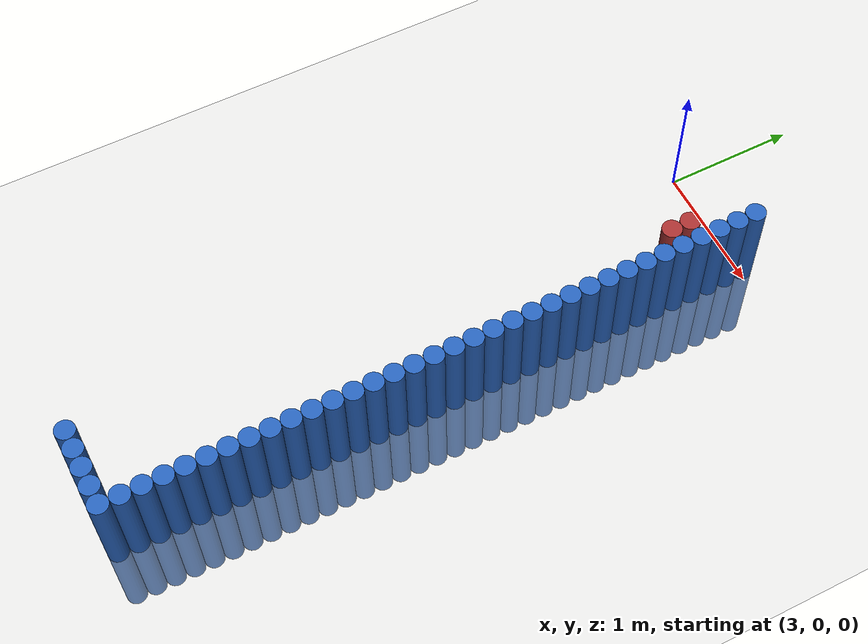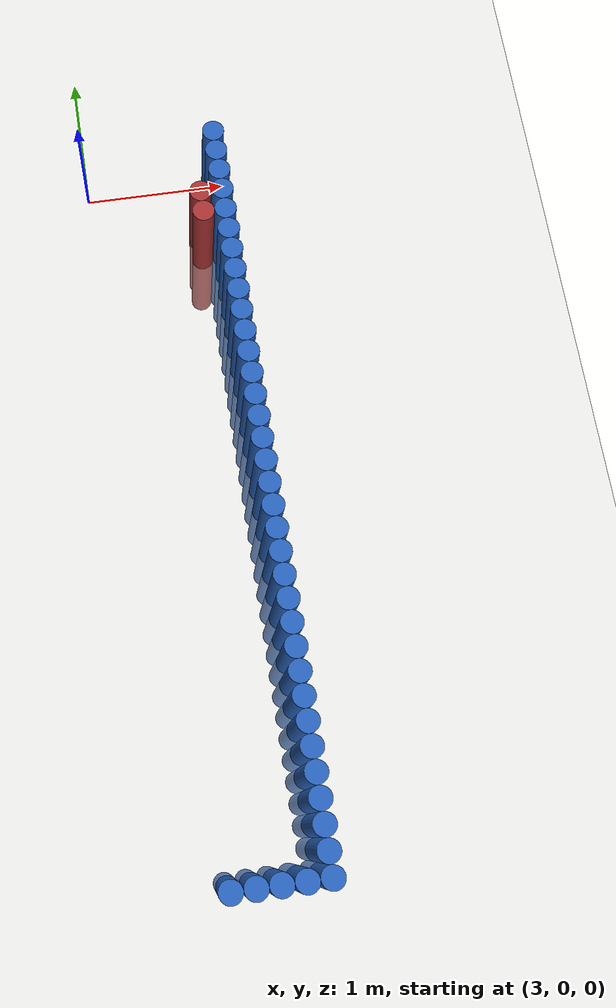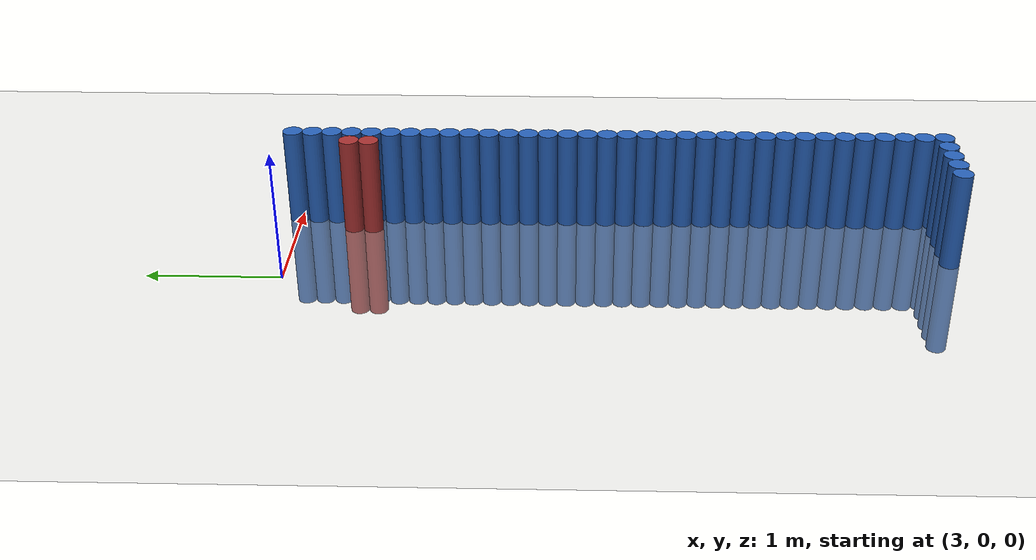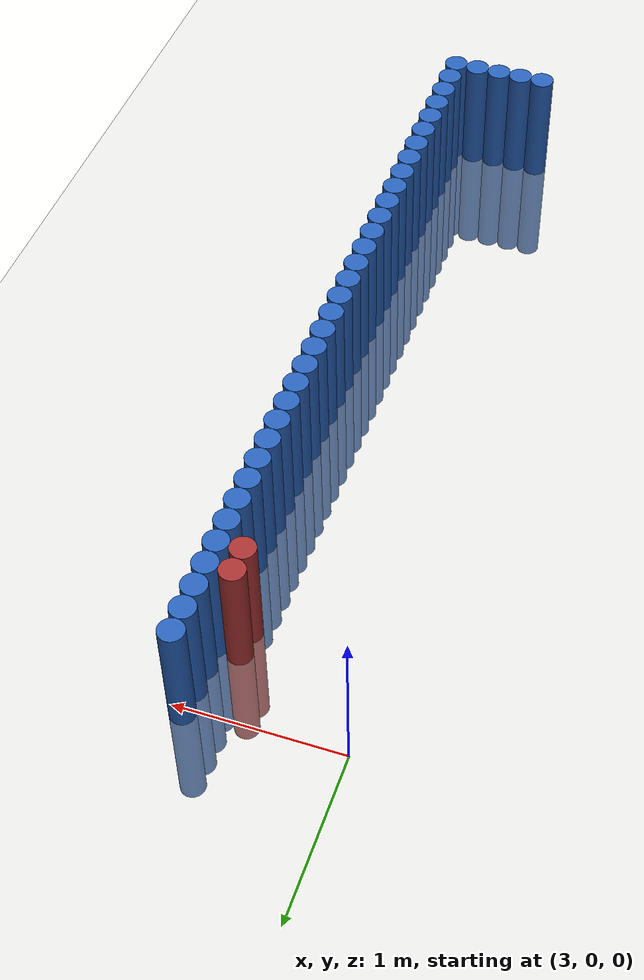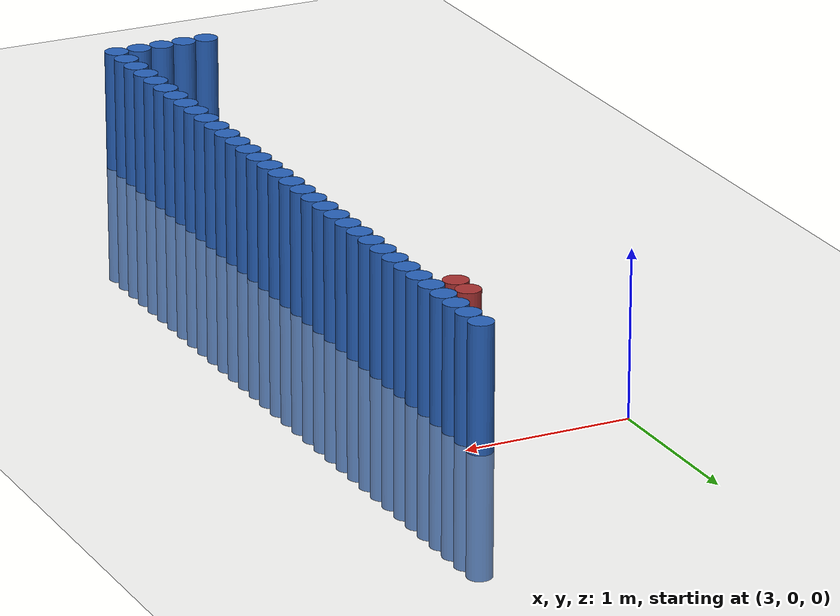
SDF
<sdf version="1.6">
 <world name="default">
  <model name="ground_plane">
   <static>1</static>
   <link name="link">
    <collision name="collision">
     <geometry><plane><normal>0 0 1</normal><size>100 100</size></plane></geometry>
     <surface><friction><ode><mu>100</mu><mu2>50</mu2></ode></friction></surface>
    </collision>
    <visual name="visual">
     <cast_shadows>0</cast_shadows>
     <geometry><plane><normal>0 0 1</normal><size>100 100</size></plane></geometry>
     <material>
      <script><uri>file://media/materials/scripts/gazebo.material</uri><name>Gazebo/Grey</name></script>
     </material>
    </visual>
   </link>
  </model>
  <model name="unit_cylinder_0">
   <static>1</static>
   <pose>3.925000 -4.925000 0.000000 0.000000 0.000000 0.000000</pose>
   <link name="link">
    <inertial>
     <mass>1</mass>
     <inertia><ixx>0.145833</ixx><ixy>0</ixy><ixz>0</ixz><iyy>0.145833</iyy><iyz>0</iyz><izz>0.125</izz></inertia>
    </inertial>
    <collision name="collision">
     <geometry><cylinder><radius>0.075000</radius><length>1.5</length></cylinder></geometry>
    </collision>
    <visual name="visual">
     <geometry><cylinder><radius>0.075000</radius><length>1.5</length></cylinder></geometry>
     <material>
      <ambient>0.152000 0.379000 0.720000 1</ambient>
      <diffuse>0.152000 0.379000 0.720000 1</diffuse>
     </material>
     <material>
      <script><name>Gazebo/Grey</name><uri>file://media/materials/scripts/gazebo.material</uri></script>
     </material>
    </visual>
   </link>
  </model>
  <model name="unit_cylinder_1">
   <static>1</static>
   <pose>3.775000 -4.925000 0.000000 0.000000 0.000000 0.000000</pose>
   <link name="link">
    <inertial>
     <mass>1</mass>
     <inertia><ixx>0.145833</ixx><ixy>0</ixy><ixz>0</ixz><iyy>0.145833</iyy><iyz>0</iyz><izz>0.125</izz></inertia>
    </inertial>
    <collision name="collision">
     <geometry><cylinder><radius>0.075000</radius><length>1.5</length></cylinder></geometry>
    </collision>
    <visual name="visual">
     <geometry><cylinder><radius>0.075000</radius><length>1.5</length></cylinder></geometry>
     <material>
      <ambient>0.152000 0.379000 0.720000 1</ambient>
      <diffuse>0.152000 0.379000 0.720000 1</diffuse>
     </material>
     <material>
      <script><name>Gazebo/Grey</name><uri>file://media/materials/scripts/gazebo.material</uri></script>
     </material>
    </visual>
   </link>
  </model>
  <model name="unit_cylinder_2">
   <static>1</static>
   <pose>3.625000 -4.925000 0.000000 0.000000 0.000000 0.000000</pose>
   <link name="link">
    <inertial>
     <mass>1</mass>
     <inertia><ixx>0.145833</ixx><ixy>0</ixy><ixz>0</ixz><iyy>0.145833</iyy><iyz>0</iyz><izz>0.125</izz></inertia>
    </inertial>
    <collision name="collision">
     <geometry><cylinder><radius>0.075000</radius><length>1.5</length></cylinder></geometry>
    </collision>
    <visual name="visual">
     <geometry><cylinder><radius>0.075000</radius><length>1.5</length></cylinder></geometry>
     <material>
      <ambient>0.152000 0.379000 0.720000 1</ambient>
      <diffuse>0.152000 0.379000 0.720000 1</diffuse>
     </material>
     <material>
      <script><name>Gazebo/Grey</name><uri>file://media/materials/scripts/gazebo.material</uri></script>
     </material>
    </visual>
   </link>
  </model>
  <model name="unit_cylinder_3">
   <static>1</static>
   <pose>3.475000 -4.925000 0.000000 0.000000 0.000000 0.000000</pose>
   <link name="link">
    <inertial>
     <mass>1</mass>
     <inertia><ixx>0.145833</ixx><ixy>0</ixy><ixz>0</ixz><iyy>0.145833</iyy><iyz>0</iyz><izz>0.125</izz></inertia>
    </inertial>
    <collision name="collision">
     <geometry><cylinder><radius>0.075000</radius><length>1.5</length></cylinder></geometry>
    </collision>
    <visual name="visual">
     <geometry><cylinder><radius>0.075000</radius><length>1.5</length></cylinder></geometry>
     <material>
      <ambient>0.152000 0.379000 0.720000 1</ambient>
      <diffuse>0.152000 0.379000 0.720000 1</diffuse>
     </material>
     <material>
      <script><name>Gazebo/Grey</name><uri>file://media/materials/scripts/gazebo.material</uri></script>
     </material>
    </visual>
   </link>
  </model>
  <model name="unit_cylinder_4">
   <static>1</static>
   <pose>3.325000 -4.925000 0.000000 0.000000 0.000000 0.000000</pose>
   <link name="link">
    <inertial>
     <mass>1</mass>
     <inertia><ixx>0.145833</ixx><ixy>0</ixy><ixz>0</ixz><iyy>0.145833</iyy><iyz>0</iyz><izz>0.125</izz></inertia>
    </inertial>
    <collision name="collision">
     <geometry><cylinder><radius>0.075000</radius><length>1.5</length></cylinder></geometry>
    </collision>
    <visual name="visual">
     <geometry><cylinder><radius>0.075000</radius><length>1.5</length></cylinder></geometry>
     <material>
      <ambient>0.152000 0.379000 0.720000 1</ambient>
      <diffuse>0.152000 0.379000 0.720000 1</diffuse>
     </material>
     <material>
      <script><name>Gazebo/Grey</name><uri>file://media/materials/scripts/gazebo.material</uri></script>
     </material>
    </visual>
   </link>
  </model>
  <model name="unit_cylinder_50">
   <static>1</static>
   <pose>3.925000 -4.775000 0.000000 0.000000 0.000000 0.000000</pose>
   <link name="link">
    <inertial>
     <mass>1</mass>
     <inertia><ixx>0.145833</ixx><ixy>0</ixy><ixz>0</ixz><iyy>0.145833</iyy><iyz>0</iyz><izz>0.125</izz></inertia>
    </inertial>
    <collision name="collision">
     <geometry><cylinder><radius>0.075000</radius><length>1.5</length></cylinder></geometry>
    </collision>
    <visual name="visual">
     <geometry><cylinder><radius>0.075000</radius><length>1.5</length></cylinder></geometry>
     <material>
      <ambient>0.152000 0.379000 0.720000 1</ambient>
      <diffuse>0.152000 0.379000 0.720000 1</diffuse>
     </material>
     <material>
      <script><name>Gazebo/Grey</name><uri>file://media/materials/scripts/gazebo.material</uri></script>
     </material>
    </visual>
   </link>
  </model>
  <model name="unit_cylinder_52">
   <static>1</static>
   <pose>3.925000 -4.625000 0.000000 0.000000 0.000000 0.000000</pose>
   <link name="link">
    <inertial>
     <mass>1</mass>
     <inertia><ixx>0.145833</ixx><ixy>0</ixy><ixz>0</ixz><iyy>0.145833</iyy><iyz>0</iyz><izz>0.125</izz></inertia>
    </inertial>
    <collision name="collision">
     <geometry><cylinder><radius>0.075000</radius><length>1.5</length></cylinder></geometry>
    </collision>
    <visual name="visual">
     <geometry><cylinder><radius>0.075000</radius><length>1.5</length></cylinder></geometry>
     <material>
      <ambient>0.152000 0.379000 0.720000 1</ambient>
      <diffuse>0.152000 0.379000 0.720000 1</diffuse>
     </material>
     <material>
      <script><name>Gazebo/Grey</name><uri>file://media/materials/scripts/gazebo.material</uri></script>
     </material>
    </visual>
   </link>
  </model>
  <model name="unit_cylinder_54">
   <static>1</static>
   <pose>3.925000 -4.475000 0.000000 0.000000 0.000000 0.000000</pose>
   <link name="link">
    <inertial>
     <mass>1</mass>
     <inertia><ixx>0.145833</ixx><ixy>0</ixy><ixz>0</ixz><iyy>0.145833</iyy><iyz>0</iyz><izz>0.125</izz></inertia>
    </inertial>
    <collision name="collision">
     <geometry><cylinder><radius>0.075000</radius><length>1.5</length></cylinder></geometry>
    </collision>
    <visual name="visual">
     <geometry><cylinder><radius>0.075000</radius><length>1.5</length></cylinder></geometry>
     <material>
      <ambient>0.152000 0.379000 0.720000 1</ambient>
      <diffuse>0.152000 0.379000 0.720000 1</diffuse>
     </material>
     <material>
      <script><name>Gazebo/Grey</name><uri>file://media/materials/scripts/gazebo.material</uri></script>
     </material>
    </visual>
   </link>
  </model>
  <model name="unit_cylinder_56">
   <static>1</static>
   <pose>3.925000 -4.325000 0.000000 0.000000 0.000000 0.000000</pose>
   <link name="link">
    <inertial>
     <mass>1</mass>
     <inertia><ixx>0.145833</ixx><ixy>0</ixy><ixz>0</ixz><iyy>0.145833</iyy><iyz>0</iyz><izz>0.125</izz></inertia>
    </inertial>
    <collision name="collision">
     <geometry><cylinder><radius>0.075000</radius><length>1.5</length></cylinder></geometry>
    </collision>
    <visual name="visual">
     <geometry><cylinder><radius>0.075000</radius><length>1.5</length></cylinder></geometry>
     <material>
      <ambient>0.152000 0.379000 0.720000 1</ambient>
      <diffuse>0.152000 0.379000 0.720000 1</diffuse>
     </material>
     <material>
      <script><name>Gazebo/Grey</name><uri>file://media/materials/scripts/gazebo.material</uri></script>
     </material>
    </visual>
   </link>
  </model>
  <model name="unit_cylinder_58">
   <static>1</static>
   <pose>3.925000 -4.175000 0.000000 0.000000 0.000000 0.000000</pose>
   <link name="link">
    <inertial>
     <mass>1</mass>
     <inertia><ixx>0.145833</ixx><ixy>0</ixy><ixz>0</ixz><iyy>0.145833</iyy><iyz>0</iyz><izz>0.125</izz></inertia>
    </inertial>
    <collision name="collision">
     <geometry><cylinder><radius>0.075000</radius><length>1.5</length></cylinder></geometry>
    </collision>
    <visual name="visual">
     <geometry><cylinder><radius>0.075000</radius><length>1.5</length></cylinder></geometry>
     <material>
      <ambient>0.152000 0.379000 0.720000 1</ambient>
      <diffuse>0.152000 0.379000 0.720000 1</diffuse>
     </material>
     <material>
      <script><name>Gazebo/Grey</name><uri>file://media/materials/scripts/gazebo.material</uri></script>
     </material>
    </visual>
   </link>
  </model>
  <model name="unit_cylinder_60">
   <static>1</static>
   <pose>3.925000 -4.025000 0.000000 0.000000 0.000000 0.000000</pose>
   <link name="link">
    <inertial>
     <mass>1</mass>
     <inertia><ixx>0.145833</ixx><ixy>0</ixy><ixz>0</ixz><iyy>0.145833</iyy><iyz>0</iyz><izz>0.125</izz></inertia>
    </inertial>
    <collision name="collision">
     <geometry><cylinder><radius>0.075000</radius><length>1.5</length></cylinder></geometry>
    </collision>
    <visual name="visual">
     <geometry><cylinder><radius>0.075000</radius><length>1.5</length></cylinder></geometry>
     <material>
      <ambient>0.152000 0.379000 0.720000 1</ambient>
      <diffuse>0.152000 0.379000 0.720000 1</diffuse>
     </material>
     <material>
      <script><name>Gazebo/Grey</name><uri>file://media/materials/scripts/gazebo.material</uri></script>
     </material>
    </visual>
   </link>
  </model>
  <model name="unit_cylinder_62">
   <static>1</static>
   <pose>3.925000 -3.875000 0.000000 0.000000 0.000000 0.000000</pose>
   <link name="link">
    <inertial>
     <mass>1</mass>
     <inertia><ixx>0.145833</ixx><ixy>0</ixy><ixz>0</ixz><iyy>0.145833</iyy><iyz>0</iyz><izz>0.125</izz></inertia>
    </inertial>
    <collision name="collision">
     <geometry><cylinder><radius>0.075000</radius><length>1.5</length></cylinder></geometry>
    </collision>
    <visual name="visual">
     <geometry><cylinder><radius>0.075000</radius><length>1.5</length></cylinder></geometry>
     <material>
      <ambient>0.152000 0.379000 0.720000 1</ambient>
      <diffuse>0.152000 0.379000 0.720000 1</diffuse>
     </material>
     <material>
      <script><name>Gazebo/Grey</name><uri>file://media/materials/scripts/gazebo.material</uri></script>
     </material>
    </visual>
   </link>
  </model>
  <model name="unit_cylinder_64">
   <static>1</static>
   <pose>3.925000 -3.725000 0.000000 0.000000 0.000000 0.000000</pose>
   <link name="link">
    <inertial>
     <mass>1</mass>
     <inertia><ixx>0.145833</ixx><ixy>0</ixy><ixz>0</ixz><iyy>0.145833</iyy><iyz>0</iyz><izz>0.125</izz></inertia>
    </inertial>
    <collision name="collision">
     <geometry><cylinder><radius>0.075000</radius><length>1.5</length></cylinder></geometry>
    </collision>
    <visual name="visual">
     <geometry><cylinder><radius>0.075000</radius><length>1.5</length></cylinder></geometry>
     <material>
      <ambient>0.152000 0.379000 0.720000 1</ambient>
      <diffuse>0.152000 0.379000 0.720000 1</diffuse>
     </material>
     <material>
      <script><name>Gazebo/Grey</name><uri>file://media/materials/scripts/gazebo.material</uri></script>
     </material>
    </visual>
   </link>
  </model>
  <model name="unit_cylinder_66">
   <static>1</static>
   <pose>3.925000 -3.575000 0.000000 0.000000 0.000000 0.000000</pose>
   <link name="link">
    <inertial>
     <mass>1</mass>
     <inertia><ixx>0.145833</ixx><ixy>0</ixy><ixz>0</ixz><iyy>0.145833</iyy><iyz>0</iyz><izz>0.125</izz></inertia>
    </inertial>
    <collision name="collision">
     <geometry><cylinder><radius>0.075000</radius><length>1.5</length></cylinder></geometry>
    </collision>
    <visual name="visual">
     <geometry><cylinder><radius>0.075000</radius><length>1.5</length></cylinder></geometry>
     <material>
      <ambient>0.152000 0.379000 0.720000 1</ambient>
      <diffuse>0.152000 0.379000 0.720000 1</diffuse>
     </material>
     <material>
      <script><name>Gazebo/Grey</name><uri>file://media/materials/scripts/gazebo.material</uri></script>
     </material>
    </visual>
   </link>
  </model>
  <model name="unit_cylinder_68">
   <static>1</static>
   <pose>3.925000 -3.425000 0.000000 0.000000 0.000000 0.000000</pose>
   <link name="link">
    <inertial>
     <mass>1</mass>
     <inertia><ixx>0.145833</ixx><ixy>0</ixy><ixz>0</ixz><iyy>0.145833</iyy><iyz>0</iyz><izz>0.125</izz></inertia>
    </inertial>
    <collision name="collision">
     <geometry><cylinder><radius>0.075000</radius><length>1.5</length></cylinder></geometry>
    </collision>
    <visual name="visual">
     <geometry><cylinder><radius>0.075000</radius><length>1.5</length></cylinder></geometry>
     <material>
      <ambient>0.152000 0.379000 0.720000 1</ambient>
      <diffuse>0.152000 0.379000 0.720000 1</diffuse>
     </material>
     <material>
      <script><name>Gazebo/Grey</name><uri>file://media/materials/scripts/gazebo.material</uri></script>
     </material>
    </visual>
   </link>
  </model>
  <model name="unit_cylinder_70">
   <static>1</static>
   <pose>3.925000 -3.275000 0.000000 0.000000 0.000000 0.000000</pose>
   <link name="link">
    <inertial>
     <mass>1</mass>
     <inertia><ixx>0.145833</ixx><ixy>0</ixy><ixz>0</ixz><iyy>0.145833</iyy><iyz>0</iyz><izz>0.125</izz></inertia>
    </inertial>
    <collision name="collision">
     <geometry><cylinder><radius>0.075000</radius><length>1.5</length></cylinder></geometry>
    </collision>
    <visual name="visual">
     <geometry><cylinder><radius>0.075000</radius><length>1.5</length></cylinder></geometry>
     <material>
      <ambient>0.152000 0.379000 0.720000 1</ambient>
      <diffuse>0.152000 0.379000 0.720000 1</diffuse>
     </material>
     <material>
      <script><name>Gazebo/Grey</name><uri>file://media/materials/scripts/gazebo.material</uri></script>
     </material>
    </visual>
   </link>
  </model>
  <model name="unit_cylinder_72">
   <static>1</static>
   <pose>3.925000 -3.125000 0.000000 0.000000 0.000000 0.000000</pose>
   <link name="link">
    <inertial>
     <mass>1</mass>
     <inertia><ixx>0.145833</ixx><ixy>0</ixy><ixz>0</ixz><iyy>0.145833</iyy><iyz>0</iyz><izz>0.125</izz></inertia>
    </inertial>
    <collision name="collision">
     <geometry><cylinder><radius>0.075000</radius><length>1.5</length></cylinder></geometry>
    </collision>
    <visual name="visual">
     <geometry><cylinder><radius>0.075000</radius><length>1.5</length></cylinder></geometry>
     <material>
      <ambient>0.152000 0.379000 0.720000 1</ambient>
      <diffuse>0.152000 0.379000 0.720000 1</diffuse>
     </material>
     <material>
      <script><name>Gazebo/Grey</name><uri>file://media/materials/scripts/gazebo.material</uri></script>
     </material>
    </visual>
   </link>
  </model>
  <model name="unit_cylinder_74">
   <static>1</static>
   <pose>3.925000 -2.975000 0.000000 0.000000 0.000000 0.000000</pose>
   <link name="link">
    <inertial>
     <mass>1</mass>
     <inertia><ixx>0.145833</ixx><ixy>0</ixy><ixz>0</ixz><iyy>0.145833</iyy><iyz>0</iyz><izz>0.125</izz></inertia>
    </inertial>
    <collision name="collision">
     <geometry><cylinder><radius>0.075000</radius><length>1.5</length></cylinder></geometry>
    </collision>
    <visual name="visual">
     <geometry><cylinder><radius>0.075000</radius><length>1.5</length></cylinder></geometry>
     <material>
      <ambient>0.152000 0.379000 0.720000 1</ambient>
      <diffuse>0.152000 0.379000 0.720000 1</diffuse>
     </material>
     <material>
      <script><name>Gazebo/Grey</name><uri>file://media/materials/scripts/gazebo.material</uri></script>
     </material>
    </visual>
   </link>
  </model>
  <model name="unit_cylinder_76">
   <static>1</static>
   <pose>3.925000 -2.825000 0.000000 0.000000 0.000000 0.000000</pose>
   <link name="link">
    <inertial>
     <mass>1</mass>
     <inertia><ixx>0.145833</ixx><ixy>0</ixy><ixz>0</ixz><iyy>0.145833</iyy><iyz>0</iyz><izz>0.125</izz></inertia>
    </inertial>
    <collision name="collision">
     <geometry><cylinder><radius>0.075000</radius><length>1.5</length></cylinder></geometry>
    </collision>
    <visual name="visual">
     <geometry><cylinder><radius>0.075000</radius><length>1.5</length></cylinder></geometry>
     <material>
      <ambient>0.152000 0.379000 0.720000 1</ambient>
      <diffuse>0.152000 0.379000 0.720000 1</diffuse>
     </material>
     <material>
      <script><name>Gazebo/Grey</name><uri>file://media/materials/scripts/gazebo.material</uri></script>
     </material>
    </visual>
   </link>
  </model>
  <model name="unit_cylinder_78">
   <static>1</static>
   <pose>3.925000 -2.675000 0.000000 0.000000 0.000000 0.000000</pose>
   <link name="link">
    <inertial>
     <mass>1</mass>
     <inertia><ixx>0.145833</ixx><ixy>0</ixy><ixz>0</ixz><iyy>0.145833</iyy><iyz>0</iyz><izz>0.125</izz></inertia>
    </inertial>
    <collision name="collision">
     <geometry><cylinder><radius>0.075000</radius><length>1.5</length></cylinder></geometry>
    </collision>
    <visual name="visual">
     <geometry><cylinder><radius>0.075000</radius><length>1.5</length></cylinder></geometry>
     <material>
      <ambient>0.152000 0.379000 0.720000 1</ambient>
      <diffuse>0.152000 0.379000 0.720000 1</diffuse>
     </material>
     <material>
      <script><name>Gazebo/Grey</name><uri>file://media/materials/scripts/gazebo.material</uri></script>
     </material>
    </visual>
   </link>
  </model>
  <model name="unit_cylinder_80">
   <static>1</static>
   <pose>3.925000 -2.525000 0.000000 0.000000 0.000000 0.000000</pose>
   <link name="link">
    <inertial>
     <mass>1</mass>
     <inertia><ixx>0.145833</ixx><ixy>0</ixy><ixz>0</ixz><iyy>0.145833</iyy><iyz>0</iyz><izz>0.125</izz></inertia>
    </inertial>
    <collision name="collision">
     <geometry><cylinder><radius>0.075000</radius><length>1.5</length></cylinder></geometry>
    </collision>
    <visual name="visual">
     <geometry><cylinder><radius>0.075000</radius><length>1.5</length></cylinder></geometry>
     <material>
      <ambient>0.152000 0.379000 0.720000 1</ambient>
      <diffuse>0.152000 0.379000 0.720000 1</diffuse>
     </material>
     <material>
      <script><name>Gazebo/Grey</name><uri>file://media/materials/scripts/gazebo.material</uri></script>
     </material>
    </visual>
   </link>
  </model>
  <model name="unit_cylinder_82">
   <static>1</static>
   <pose>3.925000 -2.375000 0.000000 0.000000 0.000000 0.000000</pose>
   <link name="link">
    <inertial>
     <mass>1</mass>
     <inertia><ixx>0.145833</ixx><ixy>0</ixy><ixz>0</ixz><iyy>0.145833</iyy><iyz>0</iyz><izz>0.125</izz></inertia>
    </inertial>
    <collision name="collision">
     <geometry><cylinder><radius>0.075000</radius><length>1.5</length></cylinder></geometry>
    </collision>
    <visual name="visual">
     <geometry><cylinder><radius>0.075000</radius><length>1.5</length></cylinder></geometry>
     <material>
      <ambient>0.152000 0.379000 0.720000 1</ambient>
      <diffuse>0.152000 0.379000 0.720000 1</diffuse>
     </material>
     <material>
      <script><name>Gazebo/Grey</name><uri>file://media/materials/scripts/gazebo.material</uri></script>
     </material>
    </visual>
   </link>
  </model>
  <model name="unit_cylinder_84">
   <static>1</static>
   <pose>3.925000 -2.225000 0.000000 0.000000 0.000000 0.000000</pose>
   <link name="link">
    <inertial>
     <mass>1</mass>
     <inertia><ixx>0.145833</ixx><ixy>0</ixy><ixz>0</ixz><iyy>0.145833</iyy><iyz>0</iyz><izz>0.125</izz></inertia>
    </inertial>
    <collision name="collision">
     <geometry><cylinder><radius>0.075000</radius><length>1.5</length></cylinder></geometry>
    </collision>
    <visual name="visual">
     <geometry><cylinder><radius>0.075000</radius><length>1.5</length></cylinder></geometry>
     <material>
      <ambient>0.152000 0.379000 0.720000 1</ambient>
      <diffuse>0.152000 0.379000 0.720000 1</diffuse>
     </material>
     <material>
      <script><name>Gazebo/Grey</name><uri>file://media/materials/scripts/gazebo.material</uri></script>
     </material>
    </visual>
   </link>
  </model>
  <model name="unit_cylinder_86">
   <static>1</static>
   <pose>3.925000 -2.075000 0.000000 0.000000 0.000000 0.000000</pose>
   <link name="link">
    <inertial>
     <mass>1</mass>
     <inertia><ixx>0.145833</ixx><ixy>0</ixy><ixz>0</ixz><iyy>0.145833</iyy><iyz>0</iyz><izz>0.125</izz></inertia>
    </inertial>
    <collision name="collision">
     <geometry><cylinder><radius>0.075000</radius><length>1.5</length></cylinder></geometry>
    </collision>
    <visual name="visual">
     <geometry><cylinder><radius>0.075000</radius><length>1.5</length></cylinder></geometry>
     <material>
      <ambient>0.152000 0.379000 0.720000 1</ambient>
      <diffuse>0.152000 0.379000 0.720000 1</diffuse>
     </material>
     <material>
      <script><name>Gazebo/Grey</name><uri>file://media/materials/scripts/gazebo.material</uri></script>
     </material>
    </visual>
   </link>
  </model>
  <model name="unit_cylinder_88">
   <static>1</static>
   <pose>3.925000 -1.925000 0.000000 0.000000 0.000000 0.000000</pose>
   <link name="link">
    <inertial>
     <mass>1</mass>
     <inertia><ixx>0.145833</ixx><ixy>0</ixy><ixz>0</ixz><iyy>0.145833</iyy><iyz>0</iyz><izz>0.125</izz></inertia>
    </inertial>
    <collision name="collision">
     <geometry><cylinder><radius>0.075000</radius><length>1.5</length></cylinder></geometry>
    </collision>
    <visual name="visual">
     <geometry><cylinder><radius>0.075000</radius><length>1.5</length></cylinder></geometry>
     <material>
      <ambient>0.152000 0.379000 0.720000 1</ambient>
      <diffuse>0.152000 0.379000 0.720000 1</diffuse>
     </material>
     <material>
      <script><name>Gazebo/Grey</name><uri>file://media/materials/scripts/gazebo.material</uri></script>
     </material>
    </visual>
   </link>
  </model>
  <model name="unit_cylinder_90">
   <static>1</static>
   <pose>3.925000 -1.775000 0.000000 0.000000 0.000000 0.000000</pose>
   <link name="link">
    <inertial>
     <mass>1</mass>
     <inertia><ixx>0.145833</ixx><ixy>0</ixy><ixz>0</ixz><iyy>0.145833</iyy><iyz>0</iyz><izz>0.125</izz></inertia>
    </inertial>
    <collision name="collision">
     <geometry><cylinder><radius>0.075000</radius><length>1.5</length></cylinder></geometry>
    </collision>
    <visual name="visual">
     <geometry><cylinder><radius>0.075000</radius><length>1.5</length></cylinder></geometry>
     <material>
      <ambient>0.152000 0.379000 0.720000 1</ambient>
      <diffuse>0.152000 0.379000 0.720000 1</diffuse>
     </material>
     <material>
      <script><name>Gazebo/Grey</name><uri>file://media/materials/scripts/gazebo.material</uri></script>
     </material>
    </visual>
   </link>
  </model>
  <model name="unit_cylinder_92">
   <static>1</static>
   <pose>3.925000 -1.625000 0.000000 0.000000 0.000000 0.000000</pose>
   <link name="link">
    <inertial>
     <mass>1</mass>
     <inertia><ixx>0.145833</ixx><ixy>0</ixy><ixz>0</ixz><iyy>0.145833</iyy><iyz>0</iyz><izz>0.125</izz></inertia>
    </inertial>
    <collision name="collision">
     <geometry><cylinder><radius>0.075000</radius><length>1.5</length></cylinder></geometry>
    </collision>
    <visual name="visual">
     <geometry><cylinder><radius>0.075000</radius><length>1.5</length></cylinder></geometry>
     <material>
      <ambient>0.152000 0.379000 0.720000 1</ambient>
      <diffuse>0.152000 0.379000 0.720000 1</diffuse>
     </material>
     <material>
      <script><name>Gazebo/Grey</name><uri>file://media/materials/scripts/gazebo.material</uri></script>
     </material>
    </visual>
   </link>
  </model>
  <model name="unit_cylinder_94">
   <static>1</static>
   <pose>3.925000 -1.475000 0.000000 0.000000 0.000000 0.000000</pose>
   <link name="link">
    <inertial>
     <mass>1</mass>
     <inertia><ixx>0.145833</ixx><ixy>0</ixy><ixz>0</ixz><iyy>0.145833</iyy><iyz>0</iyz><izz>0.125</izz></inertia>
    </inertial>
    <collision name="collision">
     <geometry><cylinder><radius>0.075000</radius><length>1.5</length></cylinder></geometry>
    </collision>
    <visual name="visual">
     <geometry><cylinder><radius>0.075000</radius><length>1.5</length></cylinder></geometry>
     <material>
      <ambient>0.152000 0.379000 0.720000 1</ambient>
      <diffuse>0.152000 0.379000 0.720000 1</diffuse>
     </material>
     <material>
      <script><name>Gazebo/Grey</name><uri>file://media/materials/scripts/gazebo.material</uri></script>
     </material>
    </visual>
   </link>
  </model>
  <model name="unit_cylinder_96">
   <static>1</static>
   <pose>3.925000 -1.325000 0.000000 0.000000 0.000000 0.000000</pose>
   <link name="link">
    <inertial>
     <mass>1</mass>
     <inertia><ixx>0.145833</ixx><ixy>0</ixy><ixz>0</ixz><iyy>0.145833</iyy><iyz>0</iyz><izz>0.125</izz></inertia>
    </inertial>
    <collision name="collision">
     <geometry><cylinder><radius>0.075000</radius><length>1.5</length></cylinder></geometry>
    </collision>
    <visual name="visual">
     <geometry><cylinder><radius>0.075000</radius><length>1.5</length></cylinder></geometry>
     <material>
      <ambient>0.152000 0.379000 0.720000 1</ambient>
      <diffuse>0.152000 0.379000 0.720000 1</diffuse>
     </material>
     <material>
      <script><name>Gazebo/Grey</name><uri>file://media/materials/scripts/gazebo.material</uri></script>
     </material>
    </visual>
   </link>
  </model>
  <model name="unit_cylinder_98">
   <static>1</static>
   <pose>3.925000 -1.175000 0.000000 0.000000 0.000000 0.000000</pose>
   <link name="link">
    <inertial>
     <mass>1</mass>
     <inertia><ixx>0.145833</ixx><ixy>0</ixy><ixz>0</ixz><iyy>0.145833</iyy><iyz>0</iyz><izz>0.125</izz></inertia>
    </inertial>
    <collision name="collision">
     <geometry><cylinder><radius>0.075000</radius><length>1.5</length></cylinder></geometry>
    </collision>
    <visual name="visual">
     <geometry><cylinder><radius>0.075000</radius><length>1.5</length></cylinder></geometry>
     <material>
      <ambient>0.152000 0.379000 0.720000 1</ambient>
      <diffuse>0.152000 0.379000 0.720000 1</diffuse>
     </material>
     <material>
      <script><name>Gazebo/Grey</name><uri>file://media/materials/scripts/gazebo.material</uri></script>
     </material>
    </visual>
   </link>
  </model>
  <model name="unit_cylinder_100">
   <static>1</static>
   <pose>3.925000 -1.025000 0.000000 0.000000 0.000000 0.000000</pose>
   <link name="link">
    <inertial>
     <mass>1</mass>
     <inertia><ixx>0.145833</ixx><ixy>0</ixy><ixz>0</ixz><iyy>0.145833</iyy><iyz>0</iyz><izz>0.125</izz></inertia>
    </inertial>
    <collision name="collision">
     <geometry><cylinder><radius>0.075000</radius><length>1.5</length></cylinder></geometry>
    </collision>
    <visual name="visual">
     <geometry><cylinder><radius>0.075000</radius><length>1.5</length></cylinder></geometry>
     <material>
      <ambient>0.152000 0.379000 0.720000 1</ambient>
      <diffuse>0.152000 0.379000 0.720000 1</diffuse>
     </material>
     <material>
      <script><name>Gazebo/Grey</name><uri>file://media/materials/scripts/gazebo.material</uri></script>
     </material>
    </visual>
   </link>
  </model>
  <model name="unit_cylinder_102">
   <static>1</static>
   <pose>3.925000 -0.875000 0.000000 0.000000 0.000000 0.000000</pose>
   <link name="link">
    <inertial>
     <mass>1</mass>
     <inertia><ixx>0.145833</ixx><ixy>0</ixy><ixz>0</ixz><iyy>0.145833</iyy><iyz>0</iyz><izz>0.125</izz></inertia>
    </inertial>
    <collision name="collision">
     <geometry><cylinder><radius>0.075000</radius><length>1.5</length></cylinder></geometry>
    </collision>
    <visual name="visual">
     <geometry><cylinder><radius>0.075000</radius><length>1.5</length></cylinder></geometry>
     <material>
      <ambient>0.152000 0.379000 0.720000 1</ambient>
      <diffuse>0.152000 0.379000 0.720000 1</diffuse>
     </material>
     <material>
      <script><name>Gazebo/Grey</name><uri>file://media/materials/scripts/gazebo.material</uri></script>
     </material>
    </visual>
   </link>
  </model>
  <model name="unit_cylinder_104">
   <static>1</static>
   <pose>3.925000 -0.725000 0.000000 0.000000 0.000000 0.000000</pose>
   <link name="link">
    <inertial>
     <mass>1</mass>
     <inertia><ixx>0.145833</ixx><ixy>0</ixy><ixz>0</ixz><iyy>0.145833</iyy><iyz>0</iyz><izz>0.125</izz></inertia>
    </inertial>
    <collision name="collision">
     <geometry><cylinder><radius>0.075000</radius><length>1.5</length></cylinder></geometry>
    </collision>
    <visual name="visual">
     <geometry><cylinder><radius>0.075000</radius><length>1.5</length></cylinder></geometry>
     <material>
      <ambient>0.152000 0.379000 0.720000 1</ambient>
      <diffuse>0.152000 0.379000 0.720000 1</diffuse>
     </material>
     <material>
      <script><name>Gazebo/Grey</name><uri>file://media/materials/scripts/gazebo.material</uri></script>
     </material>
    </visual>
   </link>
  </model>
  <model name="unit_cylinder_106">
   <static>1</static>
   <pose>3.925000 -0.575000 0.000000 0.000000 0.000000 0.000000</pose>
   <link name="link">
    <inertial>
     <mass>1</mass>
     <inertia><ixx>0.145833</ixx><ixy>0</ixy><ixz>0</ixz><iyy>0.145833</iyy><iyz>0</iyz><izz>0.125</izz></inertia>
    </inertial>
    <collision name="collision">
     <geometry><cylinder><radius>0.075000</radius><length>1.5</length></cylinder></geometry>
    </collision>
    <visual name="visual">
     <geometry><cylinder><radius>0.075000</radius><length>1.5</length></cylinder></geometry>
     <material>
      <ambient>0.152000 0.379000 0.720000 1</ambient>
      <diffuse>0.152000 0.379000 0.720000 1</diffuse>
     </material>
     <material>
      <script><name>Gazebo/Grey</name><uri>file://media/materials/scripts/gazebo.material</uri></script>
     </material>
    </visual>
   </link>
  </model>
  <model name="unit_cylinder_108">
   <static>1</static>
   <pose>3.925000 -0.425000 0.000000 0.000000 0.000000 0.000000</pose>
   <link name="link">
    <inertial>
     <mass>1</mass>
     <inertia><ixx>0.145833</ixx><ixy>0</ixy><ixz>0</ixz><iyy>0.145833</iyy><iyz>0</iyz><izz>0.125</izz></inertia>
    </inertial>
    <collision name="collision">
     <geometry><cylinder><radius>0.075000</radius><length>1.5</length></cylinder></geometry>
    </collision>
    <visual name="visual">
     <geometry><cylinder><radius>0.075000</radius><length>1.5</length></cylinder></geometry>
     <material>
      <ambient>0.152000 0.379000 0.720000 1</ambient>
      <diffuse>0.152000 0.379000 0.720000 1</diffuse>
     </material>
     <material>
      <script><name>Gazebo/Grey</name><uri>file://media/materials/scripts/gazebo.material</uri></script>
     </material>
    </visual>
   </link>
  </model>
  <model name="unit_cylinder_110">
   <static>1</static>
   <pose>3.925000 -0.275000 0.000000 0.000000 0.000000 0.000000</pose>
   <link name="link">
    <inertial>
     <mass>1</mass>
     <inertia><ixx>0.145833</ixx><ixy>0</ixy><ixz>0</ixz><iyy>0.145833</iyy><iyz>0</iyz><izz>0.125</izz></inertia>
    </inertial>
    <collision name="collision">
     <geometry><cylinder><radius>0.075000</radius><length>1.5</length></cylinder></geometry>
    </collision>
    <visual name="visual">
     <geometry><cylinder><radius>0.075000</radius><length>1.5</length></cylinder></geometry>
     <material>
      <ambient>0.152000 0.379000 0.720000 1</ambient>
      <diffuse>0.152000 0.379000 0.720000 1</diffuse>
     </material>
     <material>
      <script><name>Gazebo/Grey</name><uri>file://media/materials/scripts/gazebo.material</uri></script>
     </material>
    </visual>
   </link>
  </model>
  <model name="unit_cylinder_112">
   <static>1</static>
   <pose>3.925000 -0.125000 0.000000 0.000000 0.000000 0.000000</pose>
   <link name="link">
    <inertial>
     <mass>1</mass>
     <inertia><ixx>0.145833</ixx><ixy>0</ixy><ixz>0</ixz><iyy>0.145833</iyy><iyz>0</iyz><izz>0.125</izz></inertia>
    </inertial>
    <collision name="collision">
     <geometry><cylinder><radius>0.075000</radius><length>1.5</length></cylinder></geometry>
    </collision>
    <visual name="visual">
     <geometry><cylinder><radius>0.075000</radius><length>1.5</length></cylinder></geometry>
     <material>
      <ambient>0.152000 0.379000 0.720000 1</ambient>
      <diffuse>0.152000 0.379000 0.720000 1</diffuse>
     </material>
     <material>
      <script><name>Gazebo/Grey</name><uri>file://media/materials/scripts/gazebo.material</uri></script>
     </material>
    </visual>
   </link>
  </model>
  <model name="unit_cylinder_114">
   <static>1</static>
   <pose>3.925000 0.025000 0.000000 0.000000 0.000000 0.000000</pose>
   <link name="link">
    <inertial>
     <mass>1</mass>
     <inertia><ixx>0.145833</ixx><ixy>0</ixy><ixz>0</ixz><iyy>0.145833</iyy><iyz>0</iyz><izz>0.125</izz></inertia>
    </inertial>
    <collision name="collision">
     <geometry><cylinder><radius>0.075000</radius><length>1.5</length></cylinder></geometry>
    </collision>
    <visual name="visual">
     <geometry><cylinder><radius>0.075000</radius><length>1.5</length></cylinder></geometry>
     <material>
      <ambient>0.152000 0.379000 0.720000 1</ambient>
      <diffuse>0.152000 0.379000 0.720000 1</diffuse>
     </material>
     <material>
      <script><name>Gazebo/Grey</name><uri>file://media/materials/scripts/gazebo.material</uri></script>
     </material>
    </visual>
   </link>
  </model>
  <model name="unit_cylinder_314">
   <static>1</static>
   <pose>3.775000 -0.575000 0.000000 0.000000 0.000000 0.000000</pose>
   <link name="link">
    <inertial>
     <mass>1</mass>
     <inertia><ixx>0.145833</ixx><ixy>0</ixy><ixz>0</ixz><iyy>0.145833</iyy><iyz>0</iyz><izz>0.125</izz></inertia>
    </inertial>
    <collision name="collision">
     <geometry><cylinder><radius>0.075000</radius><length>1.5</length></cylinder></geometry>
    </collision>
    <visual name="visual">
     <geometry><cylinder><radius>0.075000</radius><length>1.5</length></cylinder></geometry>
     <material>
      <ambient>0.648000 0.192000 0.192000 1</ambient>
      <diffuse>0.648000 0.192000 0.192000 1</diffuse>
     </material>
     <material>
      <script><name>Gazebo/Grey</name><uri>file://media/materials/scripts/gazebo.material</uri></script>
     </material>
    </visual>
   </link>
  </model>
  <model name="unit_cylinder_315">
   <static>1</static>
   <pose>3.775000 -0.425000 0.000000 0.000000 0.000000 0.000000</pose>
   <link name="link">
    <inertial>
     <mass>1</mass>
     <inertia><ixx>0.145833</ixx><ixy>0</ixy><ixz>0</ixz><iyy>0.145833</iyy><iyz>0</iyz><izz>0.125</izz></inertia>
    </inertial>
    <collision name="collision">
     <geometry><cylinder><radius>0.075000</radius><length>1.5</length></cylinder></geometry>
    </collision>
    <visual name="visual">
     <geometry><cylinder><radius>0.075000</radius><length>1.5</length></cylinder></geometry>
     <material>
      <ambient>0.648000 0.192000 0.192000 1</ambient>
      <diffuse>0.648000 0.192000 0.192000 1</diffuse>
     </material>
     <material>
      <script><name>Gazebo/Grey</name><uri>file://media/materials/scripts/gazebo.material</uri></script>
     </material>
    </visual>
   </link>
  </model>
  <model name="unit_cylinder_329">
   <static>1</static>
   <pose>3.925000 -1.925000 0.000000 0.000000 0.000000 0.000000</pose>
   <link name="link">
    <inertial>
     <mass>1</mass>
     <inertia><ixx>0.145833</ixx><ixy>0</ixy><ixz>0</ixz><iyy>0.145833</iyy><iyz>0</iyz><izz>0.125</izz></inertia>
    </inertial>
    <collision name="collision">
     <geometry><cylinder><radius>0.075000</radius><length>1.5</length></cylinder></geometry>
    </collision>
    <visual name="visual">
     <geometry><cylinder><radius>0.075000</radius><length>1.5</length></cylinder></geometry>
     <material>
      <ambient>0.152000 0.379000 0.720000 1</ambient>
      <diffuse>0.152000 0.379000 0.720000 1</diffuse>
     </material>
     <material>
      <script><name>Gazebo/Grey</name><uri>file://media/materials/scripts/gazebo.material</uri></script>
     </material>
    </visual>
   </link>
  </model>
  <model name="unit_cylinder_330">
   <static>1</static>
   <pose>3.925000 -1.775000 0.000000 0.000000 0.000000 0.000000</pose>
   <link name="link">
    <inertial>
     <mass>1</mass>
     <inertia><ixx>0.145833</ixx><ixy>0</ixy><ixz>0</ixz><iyy>0.145833</iyy><iyz>0</iyz><izz>0.125</izz></inertia>
    </inertial>
    <collision name="collision">
     <geometry><cylinder><radius>0.075000</radius><length>1.5</length></cylinder></geometry>
    </collision>
    <visual name="visual">
     <geometry><cylinder><radius>0.075000</radius><length>1.5</length></cylinder></geometry>
     <material>
      <ambient>0.152000 0.379000 0.720000 1</ambient>
      <diffuse>0.152000 0.379000 0.720000 1</diffuse>
     </material>
     <material>
      <script><name>Gazebo/Grey</name><uri>file://media/materials/scripts/gazebo.material</uri></script>
     </material>
    </visual>
   </link>
  </model>
  <model name="unit_cylinder_331">
   <static>1</static>
   <pose>3.925000 -1.625000 0.000000 0.000000 0.000000 0.000000</pose>
   <link name="link">
    <inertial>
     <mass>1</mass>
     <inertia><ixx>0.145833</ixx><ixy>0</ixy><ixz>0</ixz><iyy>0.145833</iyy><iyz>0</iyz><izz>0.125</izz></inertia>
    </inertial>
    <collision name="collision">
     <geometry><cylinder><radius>0.075000</radius><length>1.5</length></cylinder></geometry>
    </collision>
    <visual name="visual">
     <geometry><cylinder><radius>0.075000</radius><length>1.5</length></cylinder></geometry>
     <material>
      <ambient>0.152000 0.379000 0.720000 1</ambient>
      <diffuse>0.152000 0.379000 0.720000 1</diffuse>
     </material>
     <material>
      <script><name>Gazebo/Grey</name><uri>file://media/materials/scripts/gazebo.material</uri></script>
     </material>
    </visual>
   </link>
  </model>
  <model name="unit_cylinder_332">
   <static>1</static>
   <pose>3.925000 -1.475000 0.000000 0.000000 0.000000 0.000000</pose>
   <link name="link">
    <inertial>
     <mass>1</mass>
     <inertia><ixx>0.145833</ixx><ixy>0</ixy><ixz>0</ixz><iyy>0.145833</iyy><iyz>0</iyz><izz>0.125</izz></inertia>
    </inertial>
    <collision name="collision">
     <geometry><cylinder><radius>0.075000</radius><length>1.5</length></cylinder></geometry>
    </collision>
    <visual name="visual">
     <geometry><cylinder><radius>0.075000</radius><length>1.5</length></cylinder></geometry>
     <material>
      <ambient>0.152000 0.379000 0.720000 1</ambient>
      <diffuse>0.152000 0.379000 0.720000 1</diffuse>
     </material>
     <material>
      <script><name>Gazebo/Grey</name><uri>file://media/materials/scripts/gazebo.material</uri></script>
     </material>
    </visual>
   </link>
  </model>
  <model name="unit_cylinder_333">
   <static>1</static>
   <pose>3.925000 -1.325000 0.000000 0.000000 0.000000 0.000000</pose>
   <link name="link">
    <inertial>
     <mass>1</mass>
     <inertia><ixx>0.145833</ixx><ixy>0</ixy><ixz>0</ixz><iyy>0.145833</iyy><iyz>0</iyz><izz>0.125</izz></inertia>
    </inertial>
    <collision name="collision">
     <geometry><cylinder><radius>0.075000</radius><length>1.5</length></cylinder></geometry>
    </collision>
    <visual name="visual">
     <geometry><cylinder><radius>0.075000</radius><length>1.5</length></cylinder></geometry>
     <material>
      <ambient>0.152000 0.379000 0.720000 1</ambient>
      <diffuse>0.152000 0.379000 0.720000 1</diffuse>
     </material>
     <material>
      <script><name>Gazebo/Grey</name><uri>file://media/materials/scripts/gazebo.material</uri></script>
     </material>
    </visual>
   </link>
  </model>
  <model name="unit_cylinder_334">
   <static>1</static>
   <pose>3.925000 -1.175000 0.000000 0.000000 0.000000 0.000000</pose>
   <link name="link">
    <inertial>
     <mass>1</mass>
     <inertia><ixx>0.145833</ixx><ixy>0</ixy><ixz>0</ixz><iyy>0.145833</iyy><iyz>0</iyz><izz>0.125</izz></inertia>
    </inertial>
    <collision name="collision">
     <geometry><cylinder><radius>0.075000</radius><length>1.5</length></cylinder></geometry>
    </collision>
    <visual name="visual">
     <geometry><cylinder><radius>0.075000</radius><length>1.5</length></cylinder></geometry>
     <material>
      <ambient>0.152000 0.379000 0.720000 1</ambient>
      <diffuse>0.152000 0.379000 0.720000 1</diffuse>
     </material>
     <material>
      <script><name>Gazebo/Grey</name><uri>file://media/materials/scripts/gazebo.material</uri></script>
     </material>
    </visual>
   </link>
  </model>
  <model name="unit_cylinder_335">
   <static>1</static>
   <pose>3.925000 -1.025000 0.000000 0.000000 0.000000 0.000000</pose>
   <link name="link">
    <inertial>
     <mass>1</mass>
     <inertia><ixx>0.145833</ixx><ixy>0</ixy><ixz>0</ixz><iyy>0.145833</iyy><iyz>0</iyz><izz>0.125</izz></inertia>
    </inertial>
    <collision name="collision">
     <geometry><cylinder><radius>0.075000</radius><length>1.5</length></cylinder></geometry>
    </collision>
    <visual name="visual">
     <geometry><cylinder><radius>0.075000</radius><length>1.5</length></cylinder></geometry>
     <material>
      <ambient>0.152000 0.379000 0.720000 1</ambient>
      <diffuse>0.152000 0.379000 0.720000 1</diffuse>
     </material>
     <material>
      <script><name>Gazebo/Grey</name><uri>file://media/materials/scripts/gazebo.material</uri></script>
     </material>
    </visual>
   </link>
  </model>
  <model name="unit_cylinder_336">
   <static>1</static>
   <pose>3.925000 -0.875000 0.000000 0.000000 0.000000 0.000000</pose>
   <link name="link">
    <inertial>
     <mass>1</mass>
     <inertia><ixx>0.145833</ixx><ixy>0</ixy><ixz>0</ixz><iyy>0.145833</iyy><iyz>0</iyz><izz>0.125</izz></inertia>
    </inertial>
    <collision name="collision">
     <geometry><cylinder><radius>0.075000</radius><length>1.5</length></cylinder></geometry>
    </collision>
    <visual name="visual">
     <geometry><cylinder><radius>0.075000</radius><length>1.5</length></cylinder></geometry>
     <material>
      <ambient>0.152000 0.379000 0.720000 1</ambient>
      <diffuse>0.152000 0.379000 0.720000 1</diffuse>
     </material>
     <material>
      <script><name>Gazebo/Grey</name><uri>file://media/materials/scripts/gazebo.material</uri></script>
     </material>
    </visual>
   </link>
  </model>
  <model name="unit_cylinder_337">
   <static>1</static>
   <pose>3.925000 -0.725000 0.000000 0.000000 0.000000 0.000000</pose>
   <link name="link">
    <inertial>
     <mass>1</mass>
     <inertia><ixx>0.145833</ixx><ixy>0</ixy><ixz>0</ixz><iyy>0.145833</iyy><iyz>0</iyz><izz>0.125</izz></inertia>
    </inertial>
    <collision name="collision">
     <geometry><cylinder><radius>0.075000</radius><length>1.5</length></cylinder></geometry>
    </collision>
    <visual name="visual">
     <geometry><cylinder><radius>0.075000</radius><length>1.5</length></cylinder></geometry>
     <material>
      <ambient>0.152000 0.379000 0.720000 1</ambient>
      <diffuse>0.152000 0.379000 0.720000 1</diffuse>
     </material>
     <material>
      <script><name>Gazebo/Grey</name><uri>file://media/materials/scripts/gazebo.material</uri></script>
     </material>
    </visual>
   </link>
  </model>
  <model name="unit_cylinder_338">
   <static>1</static>
   <pose>3.925000 -0.575000 0.000000 0.000000 0.000000 0.000000</pose>
   <link name="link">
    <inertial>
     <mass>1</mass>
     <inertia><ixx>0.145833</ixx><ixy>0</ixy><ixz>0</ixz><iyy>0.145833</iyy><iyz>0</iyz><izz>0.125</izz></inertia>
    </inertial>
    <collision name="collision">
     <geometry><cylinder><radius>0.075000</radius><length>1.5</length></cylinder></geometry>
    </collision>
    <visual name="visual">
     <geometry><cylinder><radius>0.075000</radius><length>1.5</length></cylinder></geometry>
     <material>
      <ambient>0.152000 0.379000 0.720000 1</ambient>
      <diffuse>0.152000 0.379000 0.720000 1</diffuse>
     </material>
     <material>
      <script><name>Gazebo/Grey</name><uri>file://media/materials/scripts/gazebo.material</uri></script>
     </material>
    </visual>
   </link>
  </model>
  <model name="unit_cylinder_339">
   <static>1</static>
   <pose>3.925000 -0.425000 0.000000 0.000000 0.000000 0.000000</pose>
   <link name="link">
    <inertial>
     <mass>1</mass>
     <inertia><ixx>0.145833</ixx><ixy>0</ixy><ixz>0</ixz><iyy>0.145833</iyy><iyz>0</iyz><izz>0.125</izz></inertia>
    </inertial>
    <collision name="collision">
     <geometry><cylinder><radius>0.075000</radius><length>1.5</length></cylinder></geometry>
    </collision>
    <visual name="visual">
     <geometry><cylinder><radius>0.075000</radius><length>1.5</length></cylinder></geometry>
     <material>
      <ambient>0.152000 0.379000 0.720000 1</ambient>
      <diffuse>0.152000 0.379000 0.720000 1</diffuse>
     </material>
     <material>
      <script><name>Gazebo/Grey</name><uri>file://media/materials/scripts/gazebo.material</uri></script>
     </material>
    </visual>
   </link>
  </model>
  <model name="unit_cylinder_340">
   <static>1</static>
   <pose>3.925000 -0.275000 0.000000 0.000000 0.000000 0.000000</pose>
   <link name="link">
    <inertial>
     <mass>1</mass>
     <inertia><ixx>0.145833</ixx><ixy>0</ixy><ixz>0</ixz><iyy>0.145833</iyy><iyz>0</iyz><izz>0.125</izz></inertia>
    </inertial>
    <collision name="collision">
     <geometry><cylinder><radius>0.075000</radius><length>1.5</length></cylinder></geometry>
    </collision>
    <visual name="visual">
     <geometry><cylinder><radius>0.075000</radius><length>1.5</length></cylinder></geometry>
     <material>
      <ambient>0.152000 0.379000 0.720000 1</ambient>
      <diffuse>0.152000 0.379000 0.720000 1</diffuse>
     </material>
     <material>
      <script><name>Gazebo/Grey</name><uri>file://media/materials/scripts/gazebo.material</uri></script>
     </material>
    </visual>
   </link>
  </model>
  <model name="unit_cylinder_341">
   <static>1</static>
   <pose>3.925000 -0.125000 0.000000 0.000000 0.000000 0.000000</pose>
   <link name="link">
    <inertial>
     <mass>1</mass>
     <inertia><ixx>0.145833</ixx><ixy>0</ixy><ixz>0</ixz><iyy>0.145833</iyy><iyz>0</iyz><izz>0.125</izz></inertia>
    </inertial>
    <collision name="collision">
     <geometry><cylinder><radius>0.075000</radius><length>1.5</length></cylinder></geometry>
    </collision>
    <visual name="visual">
     <geometry><cylinder><radius>0.075000</radius><length>1.5</length></cylinder></geometry>
     <material>
      <ambient>0.152000 0.379000 0.720000 1</ambient>
      <diffuse>0.152000 0.379000 0.720000 1</diffuse>
     </material>
     <material>
      <script><name>Gazebo/Grey</name><uri>file://media/materials/scripts/gazebo.material</uri></script>
     </material>
    </visual>
   </link>
  </model>
  <model name="unit_cylinder_342">
   <static>1</static>
   <pose>3.925000 0.025000 0.000000 0.000000 0.000000 0.000000</pose>
   <link name="link">
    <inertial>
     <mass>1</mass>
     <inertia><ixx>0.145833</ixx><ixy>0</ixy><ixz>0</ixz><iyy>0.145833</iyy><iyz>0</iyz><izz>0.125</izz></inertia>
    </inertial>
    <collision name="collision">
     <geometry><cylinder><radius>0.075000</radius><length>1.5</length></cylinder></geometry>
    </collision>
    <visual name="visual">
     <geometry><cylinder><radius>0.075000</radius><length>1.5</length></cylinder></geometry>
     <material>
      <ambient>0.152000 0.379000 0.720000 1</ambient>
      <diffuse>0.152000 0.379000 0.720000 1</diffuse>
     </material>
     <material>
      <script><name>Gazebo/Grey</name><uri>file://media/materials/scripts/gazebo.material</uri></script>
     </material>
    </visual>
   </link>
  </model>
 </world>
</sdf>
